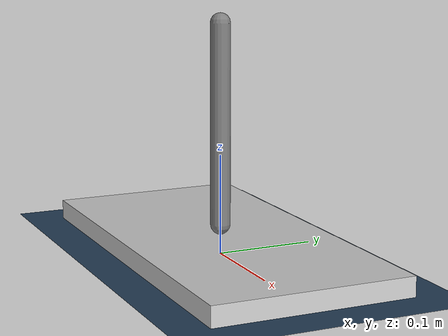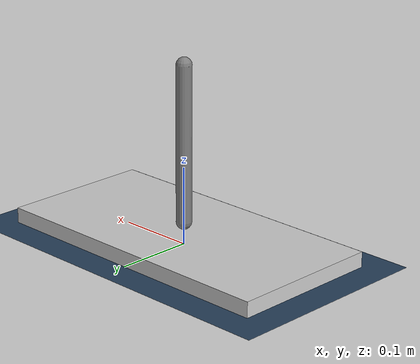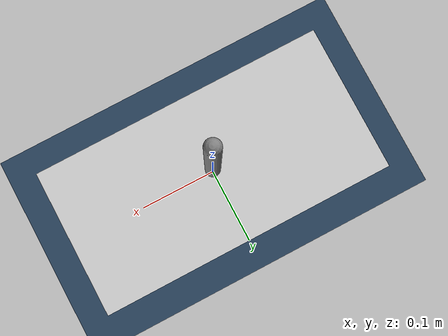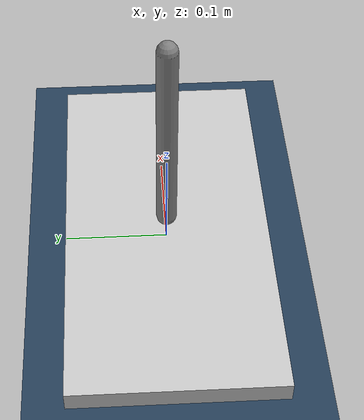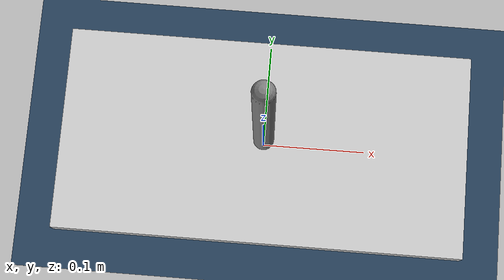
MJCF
<mujoco model="Inverted Pendulum">
	<asset>
		<texture name="grid" type="2d" builtin="checker" width="512" height="512" rgb1=".1 .2 .3" rgb2=".2 .3 .4"/>
		<material name="grid" texture="grid" texrepeat="1 1" texuniform="true" reflectance=".2"/>
	</asset>

	<worldbody>
		<geom type="plane" size="0 0 0.1" material="grid"/>
		<light directional="false" pos="0 0 10" dir="0 0 -1" diffuse="1 1 1" active="true"/>

		<body pos="0 0 0.01">
			<geom type="box" size="0.2 0.1 0.01" rgba="0.8 0.8 0.8 1.0"/>
			<joint name="slide" type="slide" pos="0 0 -0.25" axis="1 0 0"/>

			<body pos="0.0 0.0 0.12">
				<geom type="capsule" size="0.01 0.1"/>
				<joint type="hinge" pos="0.0 0.0 -0.12" axis="0 1 0"/>
			</body>

		</body>

	</worldbody>

	<actuator>
		<general joint="slide" ctrlrange="-100 100"/>
	</actuator>

</mujoco>
